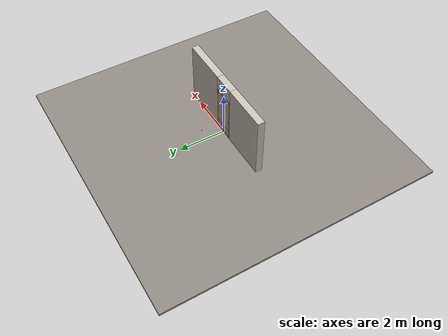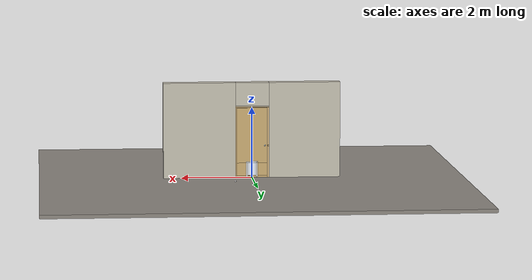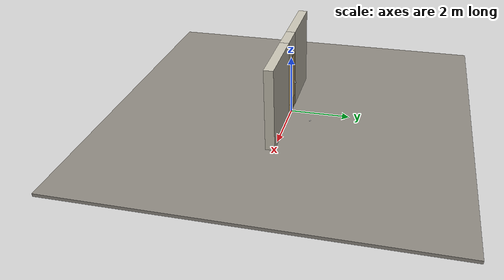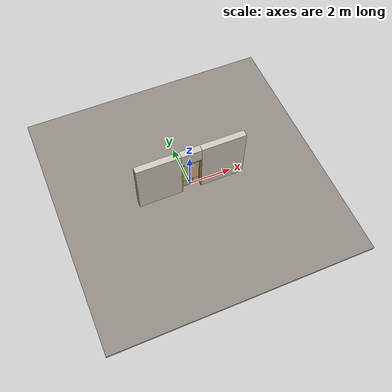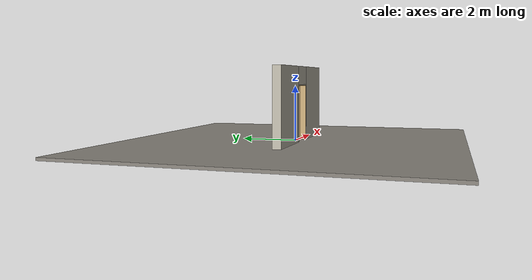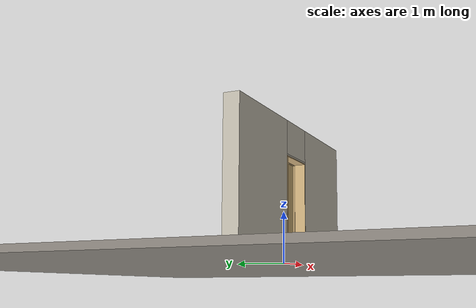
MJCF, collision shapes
<?xml version="1.0" ?>
<mujoco model="db0785_swing_single_simple">
  <compiler angle="radian" meshdir="../../hardware" texturedir="../../textures" autolimits="true" inertiafromgeom="false"/>
  <option timestep="0.002" integrator="implicitfast" cone="elliptic" impratio="10" noslip_iterations="3">
    <flag multiccd="enable"/>
  </option>
  <size memory="16M"/>
  <default>
    <geom condim="4" solref="0.005 1" solimp="0.95 0.99 0.001"/>
    <joint solreflimit="0.005 1" solimplimit="0.95 0.99 0.001"/>
    <tendon solreflimit="0.005 1"/>
    <equality solref="0.002 1"/>
  </default>
  <visual>
    <headlight ambient="0.4 0.4 0.4" diffuse="0.7 0.7 0.7" specular="0.2 0.2 0.2"/>
    <quality shadowsize="4096"/>
    <map znear="0.01" zfar="60"/>
  </visual>
  <asset>
    <mesh name="hinge_7678ceaa91" file="hinge_7678ceaa91.obj"/>
    <mesh name="hinge_jamb_24fdb06e8a" file="hinge_jamb_24fdb06e8a.obj"/>
    <mesh name="knob_98a7916ed0" file="knob_98a7916ed0.obj"/>
    <material name="mat_floor" rgba="0.55 0.53 0.5 1" specular="0.2" shininess="0.15" reflectance="0"/>
    <material name="mat_wall" rgba="0.78 0.76 0.7 1" specular="0.2" shininess="0.1" reflectance="0"/>
    <material name="mat_hinge" rgba="0.55 0.56 0.58 1" specular="0.8" shininess="0.55" reflectance="0.4"/>
    <material name="mat_leaf" rgba="0.8 0.68 0.45 1" specular="0.2" shininess="0.5" reflectance="0"/>
    <material name="mat_leaf_louver" rgba="0.68 0.578 0.383 1" specular="0.2" shininess="0.4" reflectance="0"/>
    <material name="mat_op_glass_clear" rgba="0.85 0.92 0.95 0.25" specular="0.2" shininess="0.95" reflectance="0.1"/>
    <material name="mat_trim" rgba="0.85 0.66 0.3 1" specular="0.8" shininess="0.75" reflectance="0.4"/>
    <material name="mat_bolt" rgba="0.85 0.66 0.3 1" specular="0.8" shininess="0.75" reflectance="0.4"/>
    <material name="mat_frame" rgba="0.82 0.7 0.5 1" specular="0.2" shininess="0.45" reflectance="0"/>
    <material name="mat_stop" rgba="0.9 0.9 0.92 1" specular="0.8" shininess="0.9" reflectance="0.4"/>
    <material name="mat_petframe" rgba="0.92 0.92 0.9 1" specular="0.2" shininess="0.6" reflectance="0"/>
    <material name="mat_petflap" rgba="0.9 0.92 0.95 0.3" specular="0.2" shininess="0.9" reflectance="0.1"/>
    <texture name="skybox" type="skybox" builtin="gradient" rgb1="0.6 0.7 0.85" rgb2="0.9 0.92 0.95" width="256" height="256"/>
  </asset>
  <worldbody>
    <light name="sun" pos="1.5 -2.5 4" dir="-0.3 0.5 -0.8" directional="true" diffuse="0.8 0.8 0.8" specular="0.3 0.3 0.3" castshadow="true"/>
    <light name="fill" pos="-1.5 2.5 3" dir="0.3 -0.5 -0.7" directional="true" diffuse="0.35 0.35 0.4" castshadow="false"/>
    <camera name="robot_view" pos="0 -2.619125 1.698475" xyaxes="1 0 0 0 0.26963 0.962964" fovy="52"/>
    <camera name="far_view" pos="0 2.377125 1.698475" xyaxes="-1 0 0 0 -0.26963 0.962964" fovy="52"/>
    <camera name="iso" pos="-1.898575 -2.219425 2.098175" xyaxes="0.741536 -0.670913 0 0.242917 0.268487 0.932151" fovy="46"/>
    <camera name="detail_handle" pos="-0.191 -0.867 1.194" xyaxes="0.97561 0.219512 0 -0.070934 0.315262 0.94635" fovy="38"/>
    <geom name="floor" type="box" size="6 6 0.05" pos="0 0 -0.05" material="mat_floor" group="0" contype="1" conaffinity="1" friction="0.8 0.005 0.0001" density="2400"/>
    <geom name="wall_left" type="box" size="1.0075 0.15 1.35" pos="-1.4925 -0.121 1.35" material="mat_wall" group="0" contype="1" conaffinity="1" friction="0.6 0.005 0.0001" density="800"/>
    <geom name="wall_right" type="box" size="1.0225 0.15 1.35" pos="1.4775 -0.121 1.35" material="mat_wall" group="0" contype="1" conaffinity="1" friction="0.6 0.005 0.0001" density="800"/>
    <geom name="wall_header" type="box" size="0.47 0.15 0.3265" pos="-0.015 -0.121 2.3735" material="mat_wall" group="0" contype="1" conaffinity="1" friction="0.6 0.005 0.0001" density="800"/>
    <geom name="hinge_0_jamb" type="mesh" mesh="hinge_jamb_24fdb06e8a" pos="0.433 0.029 0.259" quat="0 0 0 1" material="mat_hinge" group="1" contype="0" conaffinity="0" density="7850"/>
    <geom name="hinge_1_jamb" type="mesh" mesh="hinge_jamb_24fdb06e8a" pos="0.433 0.029 0.9963" quat="0 0 0 1" material="mat_hinge" group="1" contype="0" conaffinity="0" density="7850"/>
    <geom name="hinge_2_jamb" type="mesh" mesh="hinge_jamb_24fdb06e8a" pos="0.433 0.029 1.8036" quat="0 0 0 1" material="mat_hinge" group="1" contype="0" conaffinity="0" density="7850"/>
    <geom name="jamb_hinge" type="box" size="0.0095 0.15 0.999" pos="0.4455 -0.121 0.999" material="mat_frame" group="0" contype="1" conaffinity="1" friction="0.6 0.005 0.0001" density="400"/>
    <geom name="strike_914_wall_n" type="box" size="0.0245 0.131575 0.0167" pos="-0.4605 -0.139425 0.914" material="mat_frame" group="0" contype="1" conaffinity="1" friction="0.6 0.005 0.0001" density="400"/>
    <geom name="strike_914_wall_p" type="box" size="0.0245 0.008 0.0167" pos="-0.4605 0.01585 0.914" material="mat_frame" group="0" contype="1" conaffinity="1" friction="0.6 0.005 0.0001" density="400"/>
    <geom name="strike_914_ramp" type="box" size="0.0245 0.01649 0.0167" pos="-0.465136 0.028673 0.914" quat="0.977148 0 0 0.212558" material="mat_frame" group="0" contype="1" conaffinity="1" friction="0.12 0.005 0.0001" density="400"/>
    <geom name="strike_914_back" type="box" size="0.01615 0.00785 0.0167" pos="-0.46885 0 0.914" material="mat_frame" group="0" contype="1" conaffinity="1" friction="0.6 0.005 0.0001" density="400"/>
    <geom name="jamb_strike_0" type="box" size="0.0245 0.15 0.44865" pos="-0.4605 -0.121 0.44865" material="mat_frame" group="0" contype="1" conaffinity="1" friction="0.6 0.005 0.0001" density="400"/>
    <geom name="jamb_strike_1" type="box" size="0.0245 0.15 0.53365" pos="-0.4605 -0.121 1.46435" material="mat_frame" group="0" contype="1" conaffinity="1" friction="0.6 0.005 0.0001" density="400"/>
    <geom name="jamb_head" type="box" size="0.47 0.15 0.0095" pos="-0.015 -0.121 2.0075" material="mat_frame" group="0" contype="1" conaffinity="1" friction="0.6 0.005 0.0001" density="400"/>
    <geom name="head_stud" type="box" size="0.47 0.15 0.015" pos="-0.015 -0.121 2.032" material="mat_wall" group="0" contype="1" conaffinity="1" friction="0.6 0.005 0.0001" density="500"/>
    <geom name="stop_hinge" type="box" size="0.0055 0.016 0.999" pos="0.4305 -0.0385 0.999" material="mat_frame" group="0" contype="1" conaffinity="1" friction="0.6 0.005 0.0001" density="400"/>
    <geom name="stop_strike" type="box" size="0.0055 0.016 0.999" pos="-0.4305 -0.0385 0.999" material="mat_frame" group="0" contype="1" conaffinity="1" friction="0.6 0.005 0.0001" density="400"/>
    <geom name="stop_head" type="box" size="0.436 0.016 0.0055" pos="0 -0.0385 1.9925" material="mat_frame" group="0" contype="1" conaffinity="1" friction="0.6 0.005 0.0001" density="400"/>
    <geom name="floor_stop_dome" type="sphere" size="0.025" pos="0.516931 0.758862 0" material="mat_stop" group="0" contype="1" conaffinity="1" friction="0.6 0.005 0.0001" density="7000"/>
    <site name="approach_point" pos="0 -1.5 0" quat="1 0 0 0" size="0.05" rgba="0.2 0.9 0.2 0.5" group="4"/>
    <site name="goal_point" pos="0 1.5 0" quat="1 0 0 0" size="0.05" rgba="0.2 0.9 0.2 0.5" group="4"/>
    <site name="door_plane_center" pos="0 0 0.999" quat="1 0 0 0" size="0.02" rgba="0.2 0.9 0.2 0.5" group="4"/>
    <body name="leaf_riser" pos="0.436 0 0">
      <inertial pos="0 0 0" mass="0.01" quat="1 0 0 0" diaginertia="0.000001 0.000001 0.000001"/>
      <joint name="leaf_rise" type="slide" axis="0 0 1" limited="true" range="0 0.0176" damping="1" armature="0.5"/>
      <body name="leaf" pos="0 0 0">
        <inertial pos="-0.430464 0.000215 0.996074" mass="54.353505" quat="0.499758 0.500469 -0.499523 0.500249" diaginertia="3.488372464 17.554954756 21.024699047"/>
        <joint name="leaf_hinge" type="hinge" axis="0 0 -1" pos="-0.003 0.029 0" limited="true" range="0 1.658063" damping="0.249771" frictionloss="0.838026" armature="0.02"/>
        <geom name="leaf_slab_below" type="box" size="0.432 0.022 0.0245" pos="-0.435 0 0.0335" material="mat_leaf" group="0" contype="1" conaffinity="1" friction="0.35 0.005 0.0001" density="1"/>
        <geom name="leaf_slab_above" type="box" size="0.432 0.022 0.7818" pos="-0.435 0 1.2018" material="mat_leaf" group="0" contype="1" conaffinity="1" friction="0.35 0.005 0.0001" density="1"/>
        <geom name="leaf_slab_left" type="box" size="0.153 0.022 0.181" pos="-0.714 0 0.239" material="mat_leaf" group="0" contype="1" conaffinity="1" friction="0.35 0.005 0.0001" density="1"/>
        <geom name="leaf_slab_right" type="box" size="0.153 0.022 0.181" pos="-0.156 0 0.239" material="mat_leaf" group="0" contype="1" conaffinity="1" friction="0.35 0.005 0.0001" density="1"/>
        <geom name="hinge_0" type="mesh" mesh="hinge_7678ceaa91" pos="-0.003 0.029 0.259" quat="0 0 0 1" material="mat_hinge" group="1" contype="0" conaffinity="0" density="7850"/>
        <geom name="hinge_1" type="mesh" mesh="hinge_7678ceaa91" pos="-0.003 0.029 0.9963" quat="0 0 0 1" material="mat_hinge" group="1" contype="0" conaffinity="0" density="7850"/>
        <geom name="hinge_2" type="mesh" mesh="hinge_7678ceaa91" pos="-0.003 0.029 1.8036" quat="0 0 0 1" material="mat_hinge" group="1" contype="0" conaffinity="0" density="7850"/>
        <geom name="leaf_latch_bolt_faceplate" type="box" size="0.0006 0.01235 0.0267" pos="-0.8664 0 0.914" material="mat_bolt" group="1" contype="0" conaffinity="0" density="8500"/>
        <geom name="pet_frame_top" type="box" size="0.165 0.028 0.02" pos="-0.435 0 0.439" material="mat_petframe" group="2" contype="0" conaffinity="0" density="1200"/>
        <geom name="pet_frame_l" type="box" size="0.02 0.028 0.22" pos="-0.58 0 0.239" material="mat_petframe" group="2" contype="0" conaffinity="0" density="1200"/>
        <geom name="pet_frame_r" type="box" size="0.02 0.028 0.22" pos="-0.29 0 0.239" material="mat_petframe" group="2" contype="0" conaffinity="0" density="1200"/>
        <site name="leaf_edge_mid" pos="-0.867 0 0.9873" quat="1 0 0 0" size="0.02" rgba="0.2 0.9 0.2 0.5" group="4"/>
        <body name="leaf_handle" pos="-0.807 0 0.914">
          <inertial pos="0 0 0" mass="0.91853" quat="-0.5 0.5 -0.5 0.5" diaginertia="0.000214357 0.003440231 0.003440231"/>
          <joint name="leaf_handle_hinge" type="hinge" axis="0 1 0" limited="true" range="0 0.8" damping="0.119589" frictionloss="0.032" stiffness="0.35" springref="-0.428571" armature="0.01"/>
          <geom name="leaf_handle_knob_n" type="mesh" mesh="knob_98a7916ed0" pos="0 -0.022 0" quat="0 0 -0.707107 0.707107" material="mat_op_glass_clear" group="1" contype="0" conaffinity="0" density="3000"/>
          <geom name="leaf_handle_knob_col_n" type="sphere" size="0.0234" pos="0 -0.067 0" material="mat_op_glass_clear" group="0" contype="1" conaffinity="1" friction="0.9 0.01 0.0001" density="3000"/>
          <geom name="leaf_handle_knob_neck_n" type="cylinder" size="0.011 0.012" pos="0 -0.034 0" quat="0.707107 -0.707107 0 0" material="mat_op_glass_clear" group="3" contype="1" conaffinity="1" rgba="0.8 0.3 0.3 0.25" friction="0.6 0.005 0.0001" density="3000"/>
          <geom name="leaf_handle_knob_p" type="mesh" mesh="knob_98a7916ed0" pos="0 0.022 0" quat="0 0 0.707107 0.707107" material="mat_op_glass_clear" group="1" contype="0" conaffinity="0" density="3000"/>
          <geom name="leaf_handle_knob_col_p" type="sphere" size="0.0234" pos="0 0.067 0" material="mat_op_glass_clear" group="0" contype="1" conaffinity="1" friction="0.9 0.01 0.0001" density="3000"/>
          <geom name="leaf_handle_knob_neck_p" type="cylinder" size="0.011 0.012" pos="0 0.034 0" quat="0.707107 -0.707107 0 0" material="mat_op_glass_clear" group="3" contype="1" conaffinity="1" rgba="0.8 0.3 0.3 0.25" friction="0.6 0.005 0.0001" density="3000"/>
          <site name="leaf_handle_grip_n" pos="0 -0.067 0" quat="1 0 0 0" size="0.012" rgba="0.2 0.9 0.2 0.5" group="4"/>
          <site name="leaf_handle_grip_p" pos="0 0.067 0" quat="1 0 0 0" size="0.012" rgba="0.2 0.9 0.2 0.5" group="4"/>
        </body>
        <body name="leaf_latch_bolt" pos="-0.867 0 0.914">
          <inertial pos="0.00865 0 0" mass="0.041419" quat="0.92388 0.382683 0 0" diaginertia="0.000000798 0.000005598 0.000005598"/>
          <joint name="leaf_latch_bolt_slide" type="slide" axis="1 0 0" limited="true" range="0 0.0127" damping="2" frictionloss="0.3" stiffness="300" springref="-0.008333" armature="0.1"/>
          <geom name="leaf_latch_bolt_capsule" type="capsule" size="0.00635 0.015" pos="0.00865 0 0" quat="0.707107 0 -0.707107 0" material="mat_bolt" group="0" contype="1" conaffinity="1" friction="0.2 0.005 0.0001" density="8500"/>
        </body>
        <body name="pet_flap" pos="-0.435 0 0.419">
          <inertial pos="0 0 -0.18" mass="0.296921" quat="-0.5 0.5 0.5 0.5" diaginertia="0.001449692 0.003066427 0.004514882"/>
          <joint name="pet_flap_hinge" type="hinge" axis="-1 0 0" limited="true" range="-1.45 1.45" damping="0.02" frictionloss="0.02" armature="0.005"/>
          <geom name="pet_flap_geom" type="box" size="0.121 0.0025 0.176" pos="0 0 -0.18" material="mat_petflap" group="0" contype="1" conaffinity="1" friction="0.6 0.005 0.0001" density="1180"/>
        </body>
      </body>
    </body>
  </worldbody>
  <tendon>
    <fixed name="leaf_latch_bolt_coupling" limited="true" range="0 10">
      <joint joint="leaf_latch_bolt_slide" coef="1"/>
      <joint joint="leaf_handle_hinge" coef="-0.019538"/>
    </fixed>
  </tendon>
  <equality>
    <joint name="leaf_rise_couple" joint1="leaf_rise" joint2="leaf_hinge" polycoef="0 0.005093 0 0 0" active="true"/>
  </equality>
  <sensor>
    <jointpos name="leaf_hinge_pos" joint="leaf_hinge"/>
    <jointvel name="leaf_hinge_vel" joint="leaf_hinge"/>
    <jointpos name="leaf_handle_hinge_pos" joint="leaf_handle_hinge"/>
    <jointvel name="leaf_handle_hinge_vel" joint="leaf_handle_hinge"/>
    <jointpos name="leaf_latch_bolt_slide_pos" joint="leaf_latch_bolt_slide"/>
    <jointvel name="leaf_latch_bolt_slide_vel" joint="leaf_latch_bolt_slide"/>
    <jointpos name="pet_flap_hinge_pos" joint="pet_flap_hinge"/>
    <jointvel name="pet_flap_hinge_vel" joint="pet_flap_hinge"/>
  </sensor>
</mujoco>
